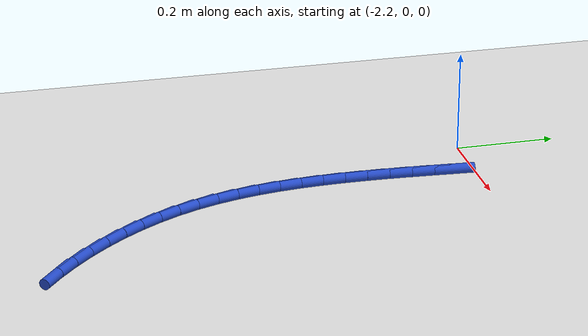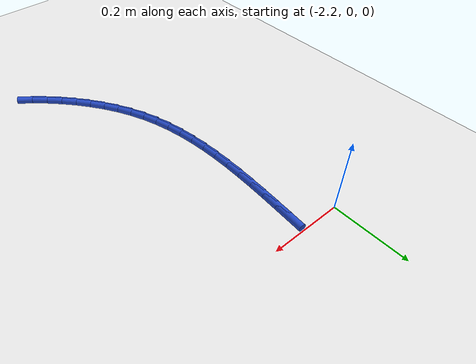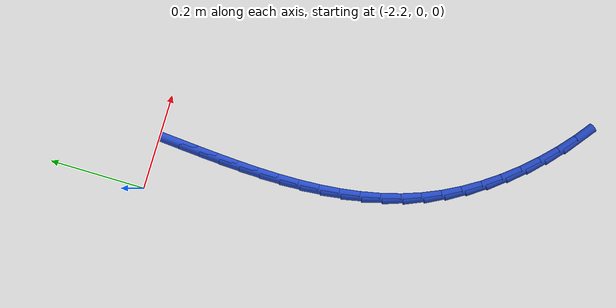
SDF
<sdf version="1.6">
 <world name="default">
  <model name="ground_plane">
   <static>1</static>
   <link name="link">
    <collision name="collision">
     <geometry><plane><normal>0 0 1</normal><size>100 100</size></plane></geometry>
     <surface><friction><ode><mu>100</mu><mu2>50</mu2></ode></friction></surface>
    </collision>
    <visual name="visual">
     <cast_shadows>0</cast_shadows>
     <geometry><plane><normal>0 0 1</normal><size>100 100</size></plane></geometry>
     <material>
      <script><uri>file://media/materials/scripts/gazebo.material</uri><name>Gazebo/WhiteGlow</name></script>
     </material>
    </visual>
   </link>
  </model>
  <model name="line">
   <link name="link_80">
    <pose>-2.0906081553578835 -0.042600684892233606 0.01 0 1.57 1.494045332599061</pose>
    <collision name="collision">
     <geometry><cylinder><radius>0.01</radius><length>0.08</length></cylinder></geometry>
    </collision>
    <visual name="visual">
     <material>
      <script><name>Gazebo/Blue</name><uri>file://media/materials/scripts/gazebo.material</uri></script>
     </material>
     <geometry><cylinder><radius>0.01</radius><length>0.08</length></cylinder></geometry>
    </visual>
   </link>
   <link name="link_81">
    <pose>-2.093992417515544 -0.08660811880880613 0.01 0 1.57 1.5015704093083702</pose>
    <collision name="collision">
     <geometry><cylinder><radius>0.01</radius><length>0.08</length></cylinder></geometry>
    </collision>
    <visual name="visual">
     <material>
      <script><name>Gazebo/Blue</name><uri>file://media/materials/scripts/gazebo.material</uri></script>
     </material>
     <geometry><cylinder><radius>0.01</radius><length>0.08</length></cylinder></geometry>
    </visual>
   </link>
   <link name="link_82">
    <pose>-2.097041676767747 -0.13058567650720515 0.01 0 1.57 1.5145970750496531</pose>
    <collision name="collision">
     <geometry><cylinder><radius>0.01</radius><length>0.08</length></cylinder></geometry>
    </collision>
    <visual name="visual">
     <material>
      <script><name>Gazebo/Blue</name><uri>file://media/materials/scripts/gazebo.material</uri></script>
     </material>
     <geometry><cylinder><radius>0.01</radius><length>0.08</length></cylinder></geometry>
    </visual>
   </link>
   <link name="link_83">
    <pose>-2.0995099096189813 -0.17445874791124963 0.01 0 1.57 1.5332531231181326</pose>
    <collision name="collision">
     <geometry><cylinder><radius>0.01</radius><length>0.08</length></cylinder></geometry>
    </collision>
    <visual name="visual">
     <material>
      <script><name>Gazebo/Blue</name><uri>file://media/materials/scripts/gazebo.material</uri></script>
     </material>
     <geometry><cylinder><radius>0.01</radius><length>0.08</length></cylinder></geometry>
    </visual>
   </link>
   <link name="link_84">
    <pose>-2.1011510925737364 -0.21815272294476074 0.01 0 1.57 1.5577191245554123</pose>
    <collision name="collision">
     <geometry><cylinder><radius>0.01</radius><length>0.08</length></cylinder></geometry>
    </collision>
    <visual name="visual">
     <material>
      <script><name>Gazebo/Blue</name><uri>file://media/materials/scripts/gazebo.material</uri></script>
     </material>
     <geometry><cylinder><radius>0.01</radius><length>0.08</length></cylinder></geometry>
    </visual>
   </link>
   <link name="link_85">
    <pose>-2.101719202136501 -0.26159299153155885 0.01 0 1.57 -1.5533786190996064</pose>
    <collision name="collision">
     <geometry><cylinder><radius>0.01</radius><length>0.08</length></cylinder></geometry>
    </collision>
    <visual name="visual">
     <material>
      <script><name>Gazebo/Blue</name><uri>file://media/materials/scripts/gazebo.material</uri></script>
     </material>
     <geometry><cylinder><radius>0.01</radius><length>0.08</length></cylinder></geometry>
    </visual>
   </link>
   <link name="link_86">
    <pose>-2.1009682148117634 -0.3047049435954646 0.01 0 1.57 -1.516619458768519</pose>
    <collision name="collision">
     <geometry><cylinder><radius>0.01</radius><length>0.08</length></cylinder></geometry>
    </collision>
    <visual name="visual">
     <material>
      <script><name>Gazebo/Blue</name><uri>file://media/materials/scripts/gazebo.material</uri></script>
     </material>
     <geometry><cylinder><radius>0.01</radius><length>0.08</length></cylinder></geometry>
    </visual>
   </link>
   <link name="link_87">
    <pose>-2.0986521071040123 -0.3474139690602991 0.01 0 1.57 -1.4733764466963872</pose>
    <collision name="collision">
     <geometry><cylinder><radius>0.01</radius><length>0.08</length></cylinder></geometry>
    </collision>
    <visual name="visual">
     <material>
      <script><name>Gazebo/Blue</name><uri>file://media/materials/scripts/gazebo.material</uri></script>
     </material>
     <geometry><cylinder><radius>0.01</radius><length>0.08</length></cylinder></geometry>
    </visual>
   </link>
   <link name="link_88">
    <pose>-2.0945248555177374 -0.38964545784988125 0.01 0 1.57 -1.423490210040717</pose>
    <collision name="collision">
     <geometry><cylinder><radius>0.01</radius><length>0.08</length></cylinder></geometry>
    </collision>
    <visual name="visual">
     <material>
      <script><name>Gazebo/Blue</name><uri>file://media/materials/scripts/gazebo.material</uri></script>
     </material>
     <geometry><cylinder><radius>0.01</radius><length>0.08</length></cylinder></geometry>
    </visual>
   </link>
   <link name="link_89">
    <pose>-2.0883404365574267 -0.4313247998880324 0.01 0 1.57 -1.3669191713253421</pose>
    <collision name="collision">
     <geometry><cylinder><radius>0.01</radius><length>0.08</length></cylinder></geometry>
    </collision>
    <visual name="visual">
     <material>
      <script><name>Gazebo/Blue</name><uri>file://media/materials/scripts/gazebo.material</uri></script>
     </material>
     <geometry><cylinder><radius>0.01</radius><length>0.08</length></cylinder></geometry>
    </visual>
   </link>
   <link name="link_90">
    <pose>-2.0798528267275693 -0.47237738509857286 0.01 0 1.57 -1.3038075262631823</pose>
    <collision name="collision">
     <geometry><cylinder><radius>0.01</radius><length>0.08</length></cylinder></geometry>
    </collision>
    <visual name="visual">
     <material>
      <script><name>Gazebo/Blue</name><uri>file://media/materials/scripts/gazebo.material</uri></script>
     </material>
     <geometry><cylinder><radius>0.01</radius><length>0.08</length></cylinder></geometry>
    </visual>
   </link>
   <link name="link_91">
    <pose>-2.0688160025326536 -0.5127286034053231 0.01 0 1.57 -1.2345554097578193</pose>
    <collision name="collision">
     <geometry><cylinder><radius>0.01</radius><length>0.08</length></cylinder></geometry>
    </collision>
    <visual name="visual">
     <material>
      <script><name>Gazebo/Blue</name><uri>file://media/materials/scripts/gazebo.material</uri></script>
     </material>
     <geometry><cylinder><radius>0.01</radius><length>0.08</length></cylinder></geometry>
    </visual>
   </link>
   <link name="link_92">
    <pose>-2.0549839404771686 -0.5523038447321043 0.01 0 1.57 -1.1602242989047704</pose>
    <collision name="collision">
     <geometry><cylinder><radius>0.01</radius><length>0.08</length></cylinder></geometry>
    </collision>
    <visual name="visual">
     <material>
      <script><name>Gazebo/Blue</name><uri>file://media/materials/scripts/gazebo.material</uri></script>
     </material>
     <geometry><cylinder><radius>0.01</radius><length>0.08</length></cylinder></geometry>
    </visual>
   </link>
   <link name="link_93">
    <pose>-2.038128051842379 -0.5910252894344553 0.01 0 1.57 -1.0866201047593649</pose>
    <collision name="collision">
     <geometry><cylinder><radius>0.01</radius><length>0.08</length></cylinder></geometry>
    </collision>
    <visual name="visual">
     <material>
      <script><name>Gazebo/Blue</name><uri>file://media/materials/scripts/gazebo.material</uri></script>
     </material>
     <geometry><cylinder><radius>0.01</radius><length>0.08</length></cylinder></geometry>
    </visual>
   </link>
   <link name="link_94">
    <pose>-2.018278254097147 -0.6287675294605217 0.01 0 1.57 -1.0173168560609367</pose>
    <collision name="collision">
     <geometry><cylinder><radius>0.01</radius><length>0.08</length></cylinder></geometry>
    </collision>
    <visual name="visual">
     <material>
      <script><name>Gazebo/Blue</name><uri>file://media/materials/scripts/gazebo.material</uri></script>
     </material>
     <geometry><cylinder><radius>0.01</radius><length>0.08</length></cylinder></geometry>
    </visual>
   </link>
   <link name="link_95">
    <pose>-1.9956622582120465 -0.66536874495018 0.01 0 1.57 -0.9517296497552693</pose>
    <collision name="collision">
     <geometry><cylinder><radius>0.01</radius><length>0.08</length></cylinder></geometry>
    </collision>
    <visual name="visual">
     <material>
      <script><name>Gazebo/Blue</name><uri>file://media/materials/scripts/gazebo.material</uri></script>
     </material>
     <geometry><cylinder><radius>0.01</radius><length>0.08</length></cylinder></geometry>
    </visual>
   </link>
   <link name="link_96">
    <pose>-1.97051279397164 -0.7006661921297738 0.01 0 1.57 -0.889146601270404</pose>
    <collision name="collision">
     <geometry><cylinder><radius>0.01</radius><length>0.08</length></cylinder></geometry>
    </collision>
    <visual name="visual">
     <material>
      <script><name>Gazebo/Blue</name><uri>file://media/materials/scripts/gazebo.material</uri></script>
     </material>
     <geometry><cylinder><radius>0.01</radius><length>0.08</length></cylinder></geometry>
    </visual>
   </link>
   <link name="link_97">
    <pose>-1.9430625911604957 -0.7344971272256461 0.01 0 1.57 -0.8288489638059063</pose>
    <collision name="collision">
     <geometry><cylinder><radius>0.01</radius><length>0.08</length></cylinder></geometry>
    </collision>
    <visual name="visual">
     <material>
      <script><name>Gazebo/Blue</name><uri>file://media/materials/scripts/gazebo.material</uri></script>
     </material>
     <geometry><cylinder><radius>0.01</radius><length>0.08</length></cylinder></geometry>
    </visual>
   </link>
   <link name="link_98">
    <pose>-1.9135443795631748 -0.7666988064641409 0.01 0 1.57 -0.7701182233524391</pose>
    <collision name="collision">
     <geometry><cylinder><radius>0.01</radius><length>0.08</length></cylinder></geometry>
    </collision>
    <visual name="visual">
     <material>
      <script><name>Gazebo/Blue</name><uri>file://media/materials/scripts/gazebo.material</uri></script>
     </material>
     <geometry><cylinder><radius>0.01</radius><length>0.08</length></cylinder></geometry>
    </visual>
   </link>
   <link name="link_99">
    <pose>-1.8821908889642434 -0.797108486071602 0.01 0 1.57 -0.7122342174187738</pose>
    <collision name="collision">
     <geometry><cylinder><radius>0.01</radius><length>0.08</length></cylinder></geometry>
    </collision>
    <visual name="visual">
     <material>
      <script><name>Gazebo/Blue</name><uri>file://media/materials/scripts/gazebo.material</uri></script>
     </material>
     <geometry><cylinder><radius>0.01</radius><length>0.08</length></cylinder></geometry>
    </visual>
   </link>
   <link name="link_100">
    <pose>-1.849234849148266 -0.8255634222743731 0.01 0 1.57 -0.6544671290147033</pose>
    <collision name="collision">
     <geometry><cylinder><radius>0.01</radius><length>0.08</length></cylinder></geometry>
    </collision>
    <visual name="visual">
     <material>
      <script><name>Gazebo/Blue</name><uri>file://media/materials/scripts/gazebo.material</uri></script>
     </material>
     <geometry><cylinder><radius>0.01</radius><length>0.08</length></cylinder></geometry>
    </visual>
   </link>
  </model>
 </world>
</sdf>
